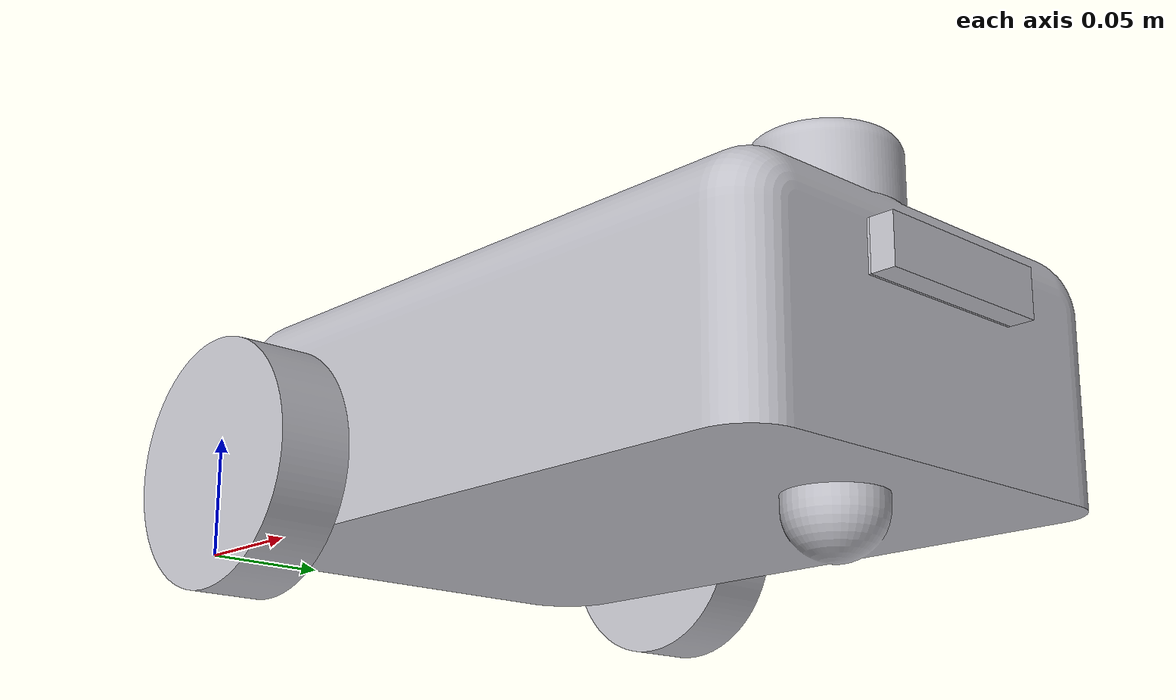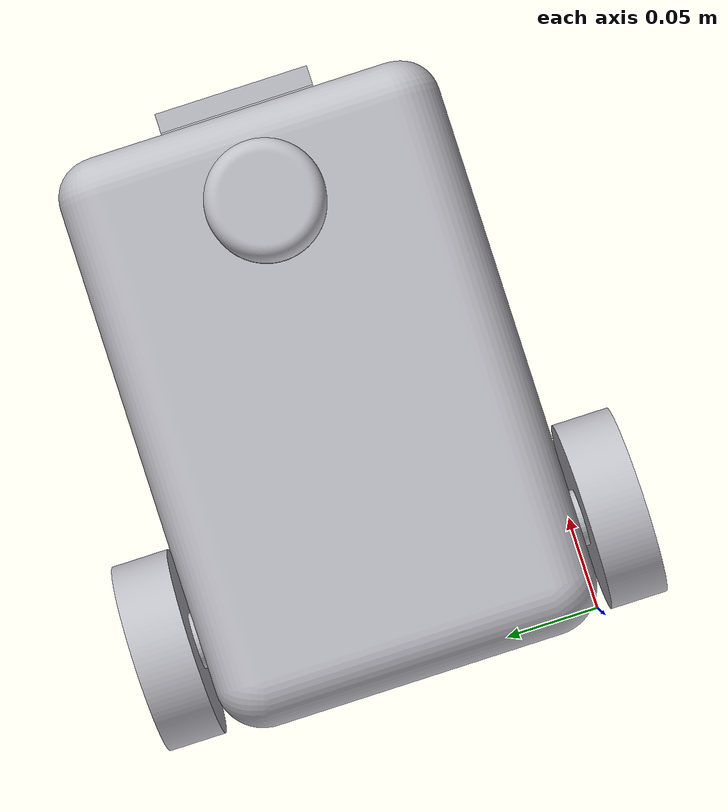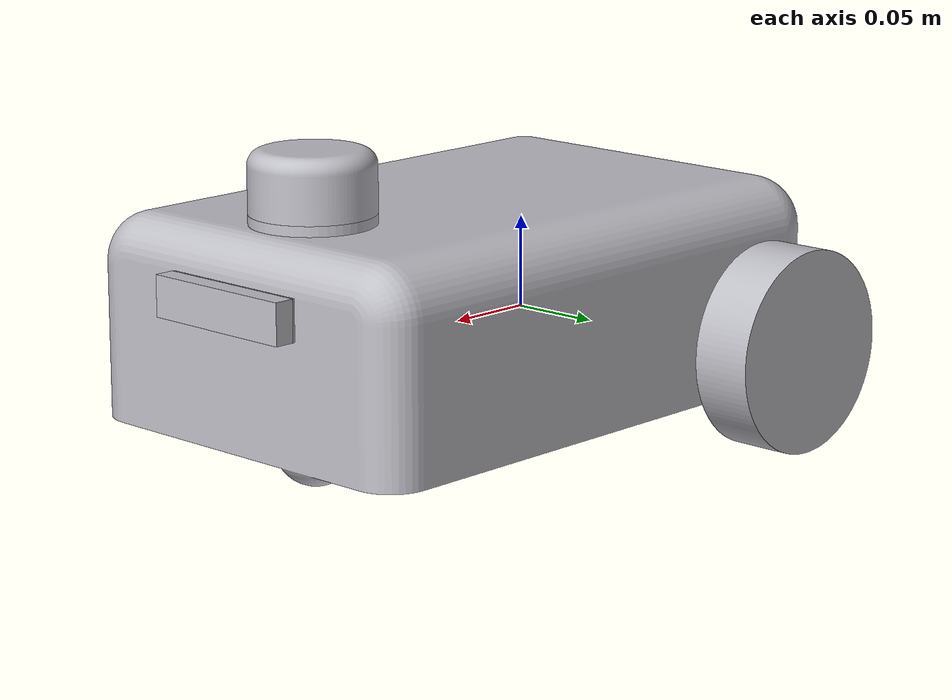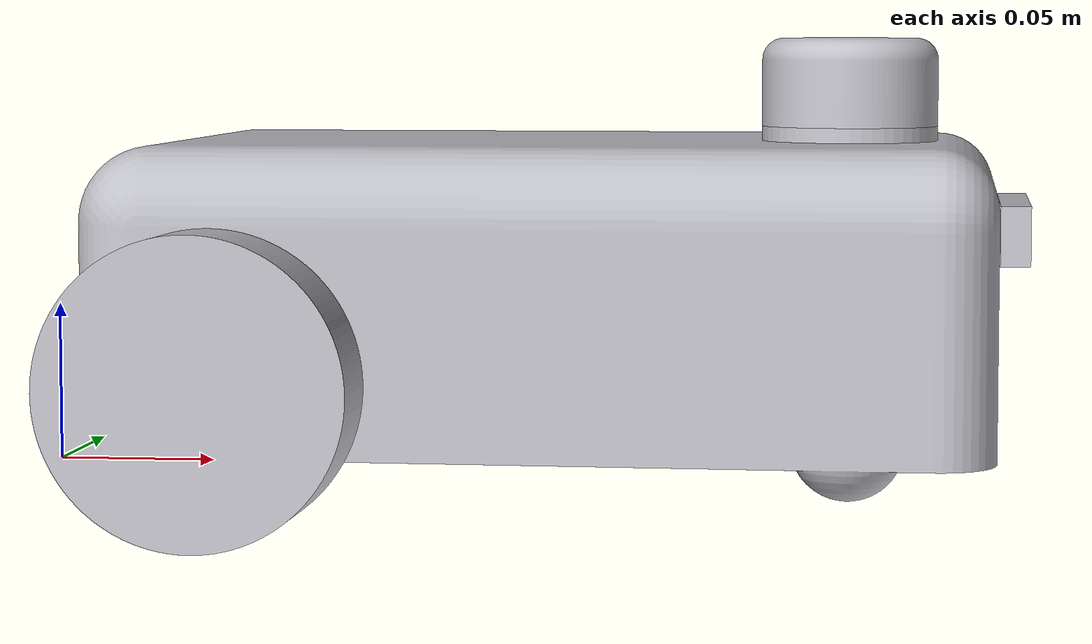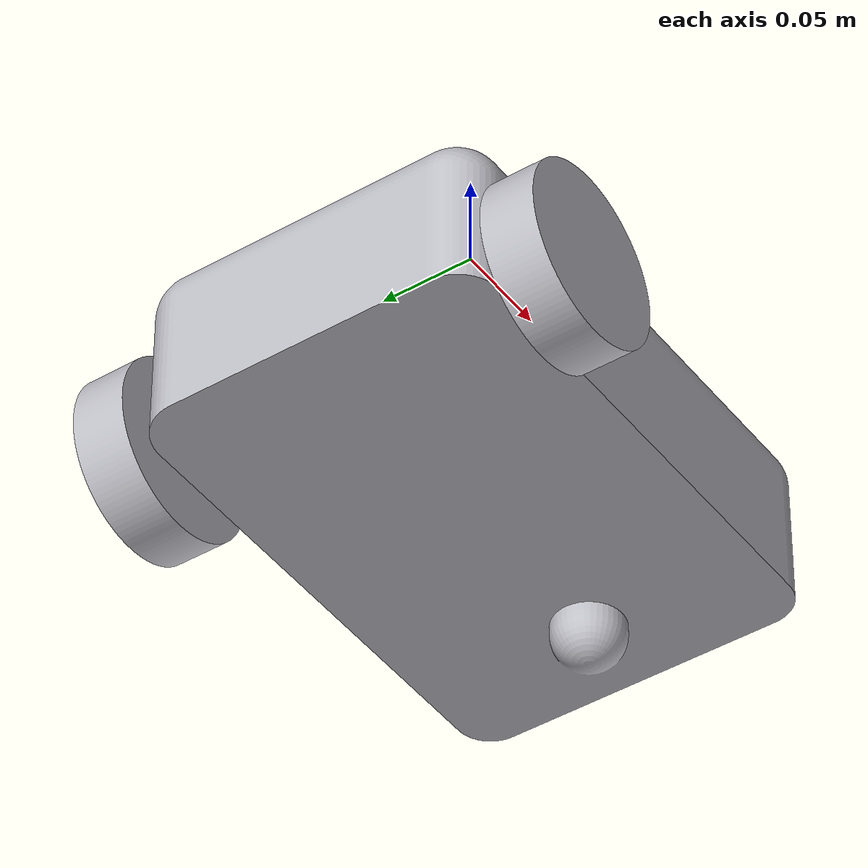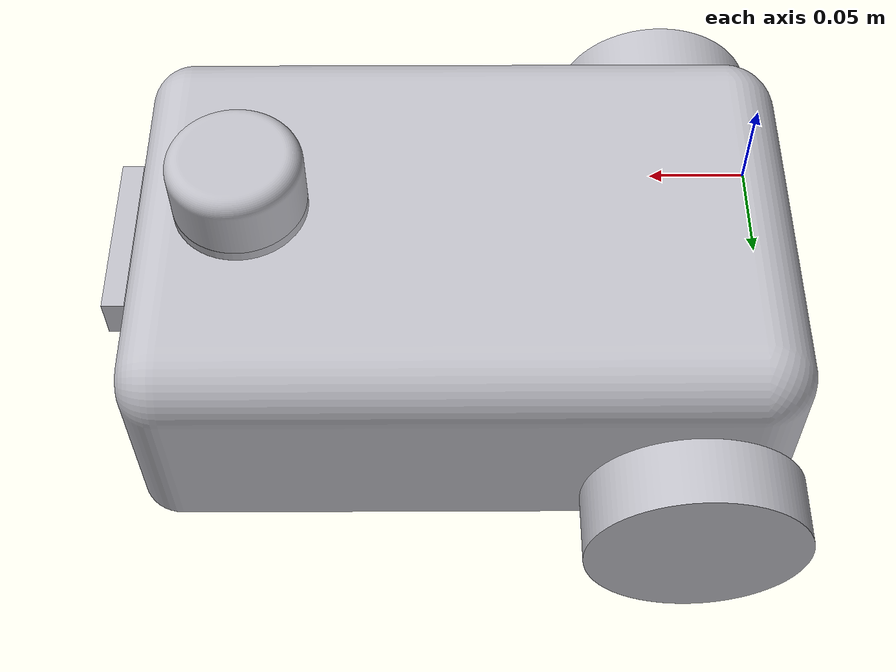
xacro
<?xml version="1.0" ?>
<robot name="differential_drive" xmlns:xacro="http://www.ros.org/wiki/xacro">

<xacro:include filename="$(find differential_drive_description)/urdf/materials.xacro" />
<xacro:include filename="$(find differential_drive_description)/urdf/differential_drive.trans" />
<xacro:include filename="$(find differential_drive_description)/urdf/differential_drive.gazebo" />
<link name="base_link">
  <inertial>
    <origin xyz="0.1509662686115047 0.1 0.04898971635344977" rpy="0 0 0"/>
    <mass value="5.88565993887667"/>
    <inertia ixx="0.023747" iyy="0.048056" izz="0.062098" ixy="0.0" iyz="0.0" ixz="-9e-06"/>
  </inertial>
  <visual>
    <origin xyz="0 0 0" rpy="0 0 0"/>
    <geometry>
      <mesh filename="file://$(find differential_drive_description)/meshes/base_link.stl" scale="0.001 0.001 0.001"/>
    </geometry>
    <material name="silver"/>
  </visual>
  <collision>
    <origin xyz="0 0 0" rpy="0 0 0"/>
    <geometry>
      <mesh filename="file://$(find differential_drive_description)/meshes/base_link.stl" scale="0.001 0.001 0.001"/>
    </geometry>
  </collision>
</link>

<link name="right_wheel_1">
  <inertial>
    <origin xyz="-1.3877787807814457e-17 -0.015000000000000003 0.0" rpy="0 0 0"/>
    <mass value="0.23561944901923443"/>
    <inertia ixx="0.000165" iyy="0.000295" izz="0.000165" ixy="-0.0" iyz="-0.0" ixz="0.0"/>
  </inertial>
  <visual>
    <origin xyz="-0.05 0.005 -0.025" rpy="0 0 0"/>
    <geometry>
      <mesh filename="file://$(find differential_drive_description)/meshes/right_wheel_1.stl" scale="0.001 0.001 0.001"/>
    </geometry>
    <material name="silver"/>
  </visual>
  <collision>
    <origin xyz="-0.05 0.005 -0.025" rpy="0 0 0"/>
    <geometry>
      <mesh filename="file://$(find differential_drive_description)/meshes/right_wheel_1.stl" scale="0.001 0.001 0.001"/>
    </geometry>
  </collision>
</link>

<link name="left_wheel_1">
  <inertial>
    <origin xyz="0.0 0.015000000000000013 6.938893903907228e-18" rpy="0 0 0"/>
    <mass value="0.2356194490192344"/>
    <inertia ixx="0.000165" iyy="0.000295" izz="0.000165" ixy="0.0" iyz="0.0" ixz="0.0"/>
  </inertial>
  <visual>
    <origin xyz="-0.05 -0.205 -0.025" rpy="0 0 0"/>
    <geometry>
      <mesh filename="file://$(find differential_drive_description)/meshes/left_wheel_1.stl" scale="0.001 0.001 0.001"/>
    </geometry>
    <material name="silver"/>
  </visual>
  <collision>
    <origin xyz="-0.05 -0.205 -0.025" rpy="0 0 0"/>
    <geometry>
      <mesh filename="file://$(find differential_drive_description)/meshes/left_wheel_1.stl" scale="0.001 0.001 0.001"/>
    </geometry>
  </collision>
</link>

<link name="lidar_1">
  <inertial>
    <origin xyz="0.0 0.0 0.01465481871400963" rpy="0 0 0"/>
    <mass value="0.08267466781067853"/>
    <inertia ixx="2.4e-05" iyy="2.4e-05" izz="3.6e-05" ixy="0.0" iyz="0.0" ixz="0.0"/>
  </inertial>
  <visual>
    <origin xyz="-0.25 -0.1 -0.105" rpy="0 0 0"/>
    <geometry>
      <mesh filename="file://$(find differential_drive_description)/meshes/lidar_1.stl" scale="0.001 0.001 0.001"/>
    </geometry>
    <material name="silver"/>
  </visual>
  <collision>
    <origin xyz="-0.25 -0.1 -0.105" rpy="0 0 0"/>
    <geometry>
      <mesh filename="file://$(find differential_drive_description)/meshes/lidar_1.stl" scale="0.001 0.001 0.001"/>
    </geometry>
  </collision>
</link>

<link name="camera_1">
  <inertial>
    <origin xyz="0.0050000000000000044 0.0 0.0" rpy="0 0 0"/>
    <mass value="0.015999999999999997"/>
    <inertia ixx="9e-06" iyy="1e-06" izz="9e-06" ixy="0.0" iyz="0.0" ixz="0.0"/>
  </inertial>
  <visual>
    <origin xyz="-0.301 -0.1 -0.07" rpy="0 0 0"/>
    <geometry>
      <mesh filename="file://$(find differential_drive_description)/meshes/camera_1.stl" scale="0.001 0.001 0.001"/>
    </geometry>
    <material name="silver"/>
  </visual>
  <collision>
    <origin xyz="-0.301 -0.1 -0.07" rpy="0 0 0"/>
    <geometry>
      <mesh filename="file://$(find differential_drive_description)/meshes/camera_1.stl" scale="0.001 0.001 0.001"/>
    </geometry>
  </collision>
</link>

<joint name="right_wheel_joint" type="continuous">
  <origin xyz="0.05 -0.005 0.025" rpy="0 0 0"/>
  <parent link="base_link"/>
  <child link="right_wheel_1"/>
  <axis xyz="0.0 -1.0 0.0"/>
</joint>

<joint name="left_wheel_joint" type="continuous">
  <origin xyz="0.05 0.205 0.025" rpy="0 0 0"/>
  <parent link="base_link"/>
  <child link="left_wheel_1"/>
  <axis xyz="0.0 1.0 0.0"/>
</joint>

<joint name="lidar_joint" type="fixed">
  <origin xyz="0.25 0.1 0.105" rpy="0 0 0"/>
  <parent link="base_link"/>
  <child link="lidar_1"/>
</joint>

<joint name="camera_joint" type="fixed">
  <origin xyz="0.301 0.1 0.07" rpy="0 0 0"/>
  <parent link="base_link"/>
  <child link="camera_1"/>
</joint>

</robot>

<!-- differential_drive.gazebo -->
<robot name="differential_drive" xmlns:xacro="http://www.ros.org/wiki/xacro" >

<xacro:property name="body_color" value="Gazebo/Silver" />

<gazebo>
  <plugin name="control" filename="libgazebo_ros_control.so"/>
</gazebo>
<gazebo reference="base_link">
  <material>${body_color}</material>
  <mu1>0.2</mu1>
  <mu2>0.2</mu2>
  <self_collide>true</self_collide>
  <gravity>true</gravity>
</gazebo>

<gazebo reference="right_wheel_1">
  <material>${body_color}</material>
  <mu1>0.2</mu1>
  <mu2>0.2</mu2>
  <self_collide>true</self_collide>
</gazebo>

<gazebo reference="left_wheel_1">
  <material>${body_color}</material>
  <mu1>0.2</mu1>
  <mu2>0.2</mu2>
  <self_collide>true</self_collide>
</gazebo>

<gazebo reference="lidar_1">
  <material>${body_color}</material>
  <mu1>0.2</mu1>
  <mu2>0.2</mu2>
  <self_collide>true</self_collide>
</gazebo>

<gazebo reference="camera_1">
  <material>${body_color}</material>
  <mu1>0.2</mu1>
  <mu2>0.2</mu2>
  <self_collide>true</self_collide>
</gazebo>

</robot>
